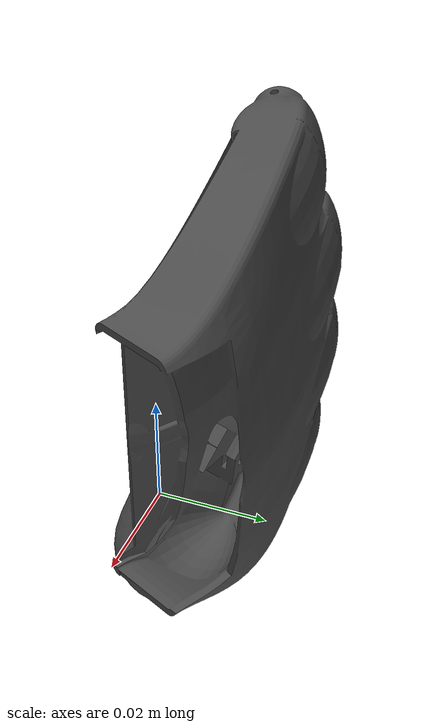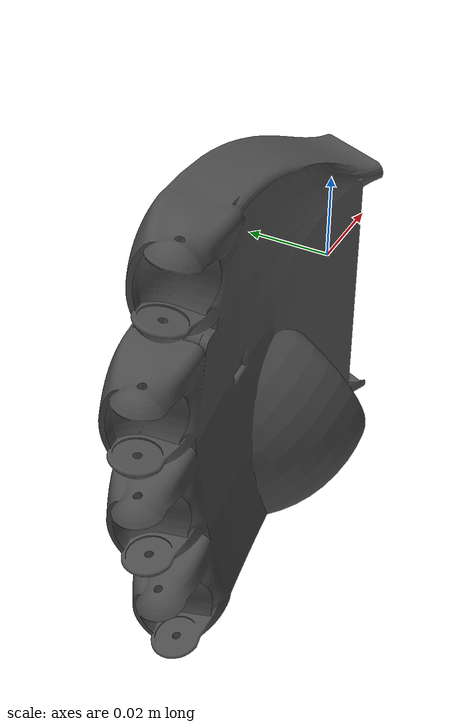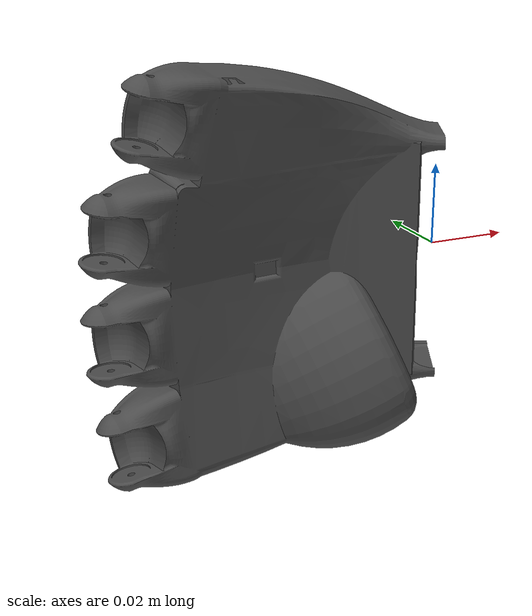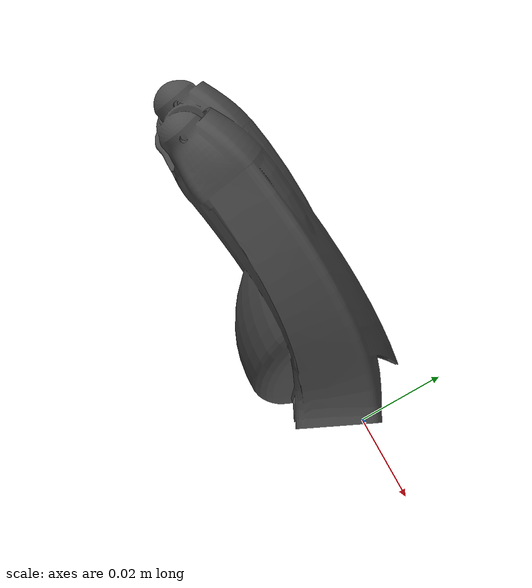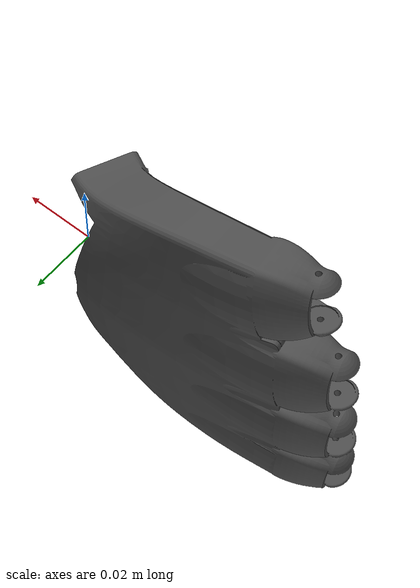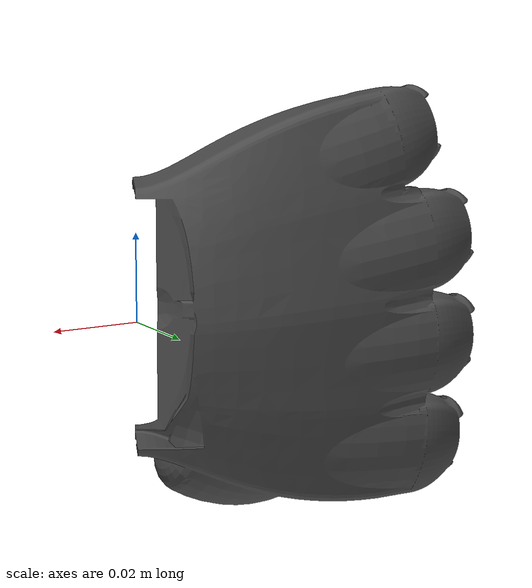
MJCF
<mujoco model="palm_left_link">
  <default>
    <default class="visual">
      <geom group="2" type="mesh" contype="0" conaffinity="0"/>
    </default>
    <default class="collision">
      <geom group="3" type="mesh"/>
    </default>
  </default>
  <asset>
    <material name="mtl_palm_left_link" specular="0.20000000000000004" shininess="1.0" rgba="0.29803922 0.29803922 0.29803922 1.0"/>
    <mesh file="palm_left_link.obj"/>
  </asset>
  <worldbody>
    <body name="palm_left_link">
      <geom material="mtl_palm_left_link" mesh="palm_left_link" class="visual"/>
      <geom mesh="palm_left_link" class="collision"/>
    </body>
  </worldbody>
</mujoco>
